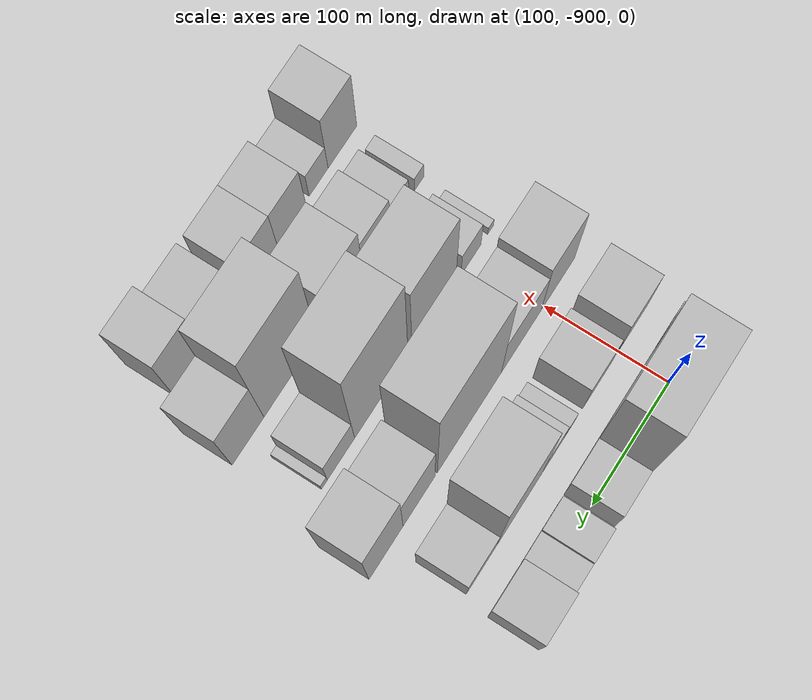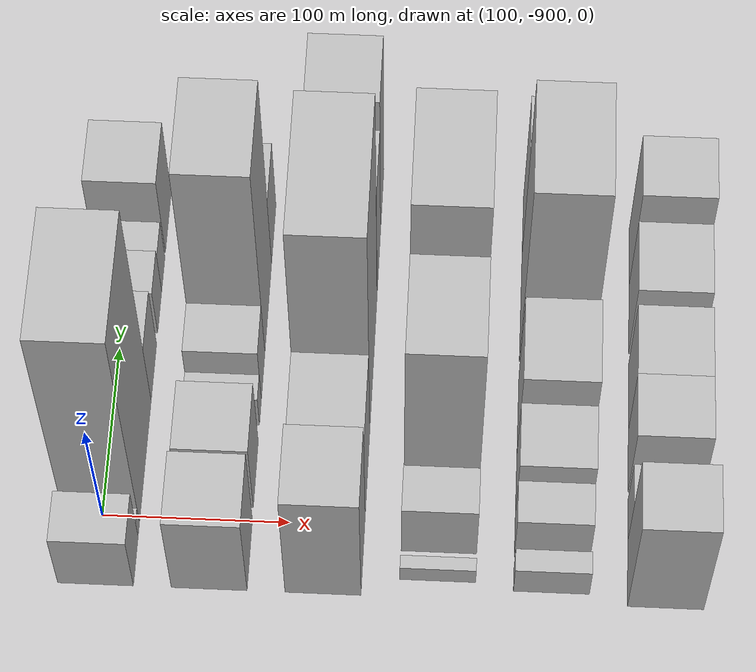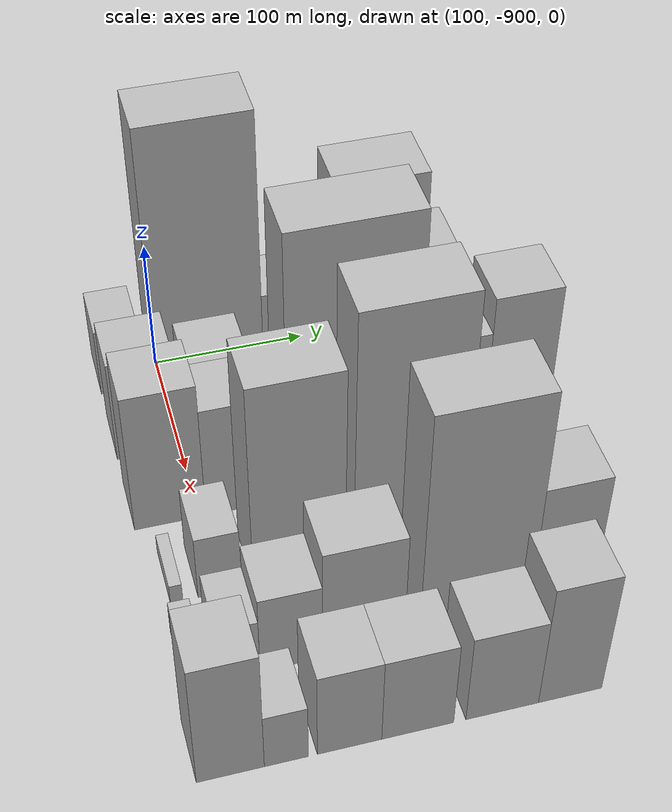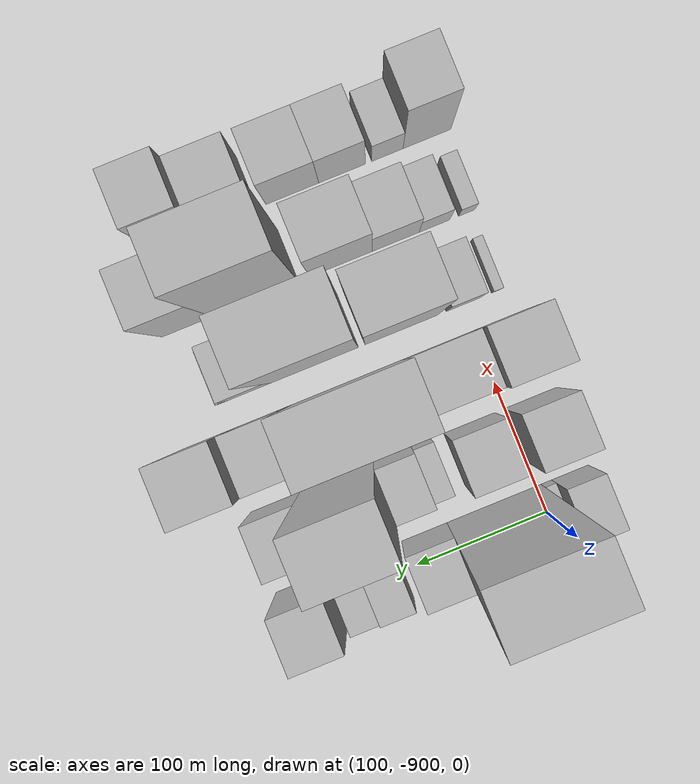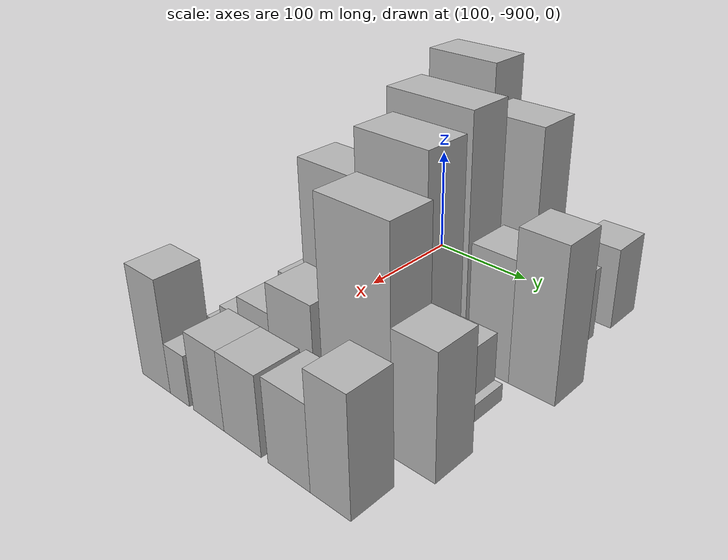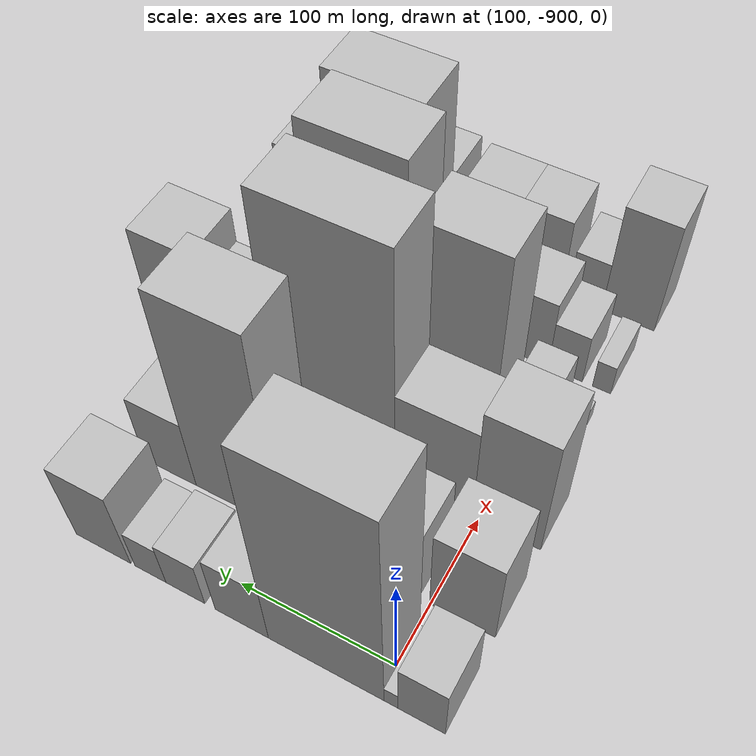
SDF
<sdf version="1.6">
 <world name="default">
  <model name="building_1">
   <static>1</static>
   <pose>100.0000 -925.8570 0 0.000000 0.000000 0.000000</pose>
   <link name="link">
    <pose>0 0 27.00 0 0 0</pose>
    <collision name="collision"><geometry><box><size>40.0000 28.2860 54.0000</size></box></geometry></collision>
    <visual name="visual">
     <cast_shadows>0</cast_shadows>
     <geometry><box><size>40.0000 28.2860 54.0000</size></box></geometry>
     <material>
      <script>
       <uri>model://HANNAS_wall/materials/scripts</uri>
       <uri>model://HANNAS_wall/materials/textures</uri>
       <name>vrc/HANNAS_wall</name>
      </script>
     </material>
    </visual>
   </link>
  </model>
  <model name="building_2">
   <static>1</static>
   <pose>100.0000 -907.5937 0 0.000000 0.000000 0.000000</pose>
   <link name="link">
    <pose>0 0 9.00 0 0 0</pose>
    <collision name="collision"><geometry><box><size>40.0000 8.2405 18.0000</size></box></geometry></collision>
    <visual name="visual">
     <cast_shadows>0</cast_shadows>
     <geometry><box><size>40.0000 8.2405 18.0000</size></box></geometry>
     <material>
      <script>
       <uri>model://HANNAS_wall/materials/scripts</uri>
       <uri>model://HANNAS_wall/materials/textures</uri>
       <name>vrc/HANNAS_wall</name>
      </script>
     </material>
    </visual>
   </link>
  </model>
  <model name="building_3">
   <static>1</static>
   <pose>100.0000 -867.1796 0 0.000000 0.000000 0.000000</pose>
   <link name="link">
    <pose>0 0 102.00 0 0 0</pose>
    <collision name="collision"><geometry><box><size>40.0000 72.5878 204.0000</size></box></geometry></collision>
    <visual name="visual">
     <cast_shadows>0</cast_shadows>
     <geometry><box><size>40.0000 72.5878 204.0000</size></box></geometry>
     <material>
      <script>
       <uri>model://HANNAS_wall/materials/scripts</uri>
       <uri>model://HANNAS_wall/materials/textures</uri>
       <name>vrc/HANNAS_wall</name>
      </script>
     </material>
    </visual>
   </link>
  </model>
  <model name="building_4">
   <static>1</static>
   <pose>100.0000 -813.3753 0 0.000000 0.000000 0.000000</pose>
   <link name="link">
    <pose>0 0 30.00 0 0 0</pose>
    <collision name="collision"><geometry><box><size>40.0000 35.0207 60.0000</size></box></geometry></collision>
    <visual name="visual">
     <cast_shadows>0</cast_shadows>
     <geometry><box><size>40.0000 35.0207 60.0000</size></box></geometry>
     <material>
      <script>
       <uri>model://HANNAS_wall/materials/scripts</uri>
       <uri>model://HANNAS_wall/materials/textures</uri>
       <name>vrc/HANNAS_wall</name>
      </script>
     </material>
    </visual>
   </link>
  </model>
  <model name="building_5">
   <static>1</static>
   <pose>100.0000 -775.6763 0 0.000000 0.000000 0.000000</pose>
   <link name="link">
    <pose>0 0 22.50 0 0 0</pose>
    <collision name="collision"><geometry><box><size>40.0000 26.3772 45.0000</size></box></geometry></collision>
    <visual name="visual">
     <cast_shadows>0</cast_shadows>
     <geometry><box><size>40.0000 26.3772 45.0000</size></box></geometry>
     <material>
      <script>
       <uri>model://HANNAS_wall/materials/scripts</uri>
       <uri>model://HANNAS_wall/materials/textures</uri>
       <name>vrc/HANNAS_wall</name>
      </script>
     </material>
    </visual>
   </link>
  </model>
  <model name="building_6">
   <static>1</static>
   <pose>100.0000 -751.6416 0 0.000000 0.000000 0.000000</pose>
   <link name="link">
    <pose>0 0 19.50 0 0 0</pose>
    <collision name="collision"><geometry><box><size>40.0000 21.6923 39.0000</size></box></geometry></collision>
    <visual name="visual">
     <cast_shadows>0</cast_shadows>
     <geometry><box><size>40.0000 21.6923 39.0000</size></box></geometry>
     <material>
      <script>
       <uri>model://HANNAS_wall/materials/scripts</uri>
       <uri>model://HANNAS_wall/materials/textures</uri>
       <name>vrc/HANNAS_wall</name>
      </script>
     </material>
    </visual>
   </link>
  </model>
  <model name="building_7">
   <static>1</static>
   <pose>100.0000 -718.3860 0 0.000000 0.000000 0.000000</pose>
   <link name="link">
    <pose>0 0 37.50 0 0 0</pose>
    <collision name="collision"><geometry><box><size>40.0000 38.8188 75.0000</size></box></geometry></collision>
    <visual name="visual">
     <cast_shadows>0</cast_shadows>
     <geometry><box><size>40.0000 38.8188 75.0000</size></box></geometry>
     <material>
      <script>
       <uri>model://HANNAS_wall/materials/scripts</uri>
       <uri>model://HANNAS_wall/materials/textures</uri>
       <name>vrc/HANNAS_wall</name>
      </script>
     </material>
    </visual>
   </link>
  </model>
  <model name="building_53">
   <static>1</static>
   <pose>160.0000 -919.6051 0 0.000000 0.000000 0.000000</pose>
   <link name="link">
    <pose>0 0 40.50 0 0 0</pose>
    <collision name="collision"><geometry><box><size>40.0000 40.7898 81.0000</size></box></geometry></collision>
    <visual name="visual">
     <cast_shadows>0</cast_shadows>
     <geometry><box><size>40.0000 40.7898 81.0000</size></box></geometry>
     <material>
      <script>
       <uri>model://HANNAS_wall/materials/scripts</uri>
       <uri>model://HANNAS_wall/materials/textures</uri>
       <name>vrc/HANNAS_wall</name>
      </script>
     </material>
    </visual>
   </link>
  </model>
  <model name="building_54">
   <static>1</static>
   <pose>160.0000 -872.5477 0 0.000000 0.000000 0.000000</pose>
   <link name="link">
    <pose>0 0 34.50 0 0 0</pose>
    <collision name="collision"><geometry><box><size>40.0000 39.3249 69.0000</size></box></geometry></collision>
    <visual name="visual">
     <cast_shadows>0</cast_shadows>
     <geometry><box><size>40.0000 39.3249 69.0000</size></box></geometry>
     <material>
      <script>
       <uri>model://HANNAS_wall/materials/scripts</uri>
       <uri>model://HANNAS_wall/materials/textures</uri>
       <name>vrc/HANNAS_wall</name>
      </script>
     </material>
    </visual>
   </link>
  </model>
  <model name="building_55">
   <static>1</static>
   <pose>160.0000 -835.2553 0 0.000000 0.000000 0.000000</pose>
   <link name="link">
    <pose>0 0 15.00 0 0 0</pose>
    <collision name="collision"><geometry><box><size>40.0000 15.2600 30.0000</size></box></geometry></collision>
    <visual name="visual">
     <cast_shadows>0</cast_shadows>
     <geometry><box><size>40.0000 15.2600 30.0000</size></box></geometry>
     <material>
      <script>
       <uri>model://HANNAS_wall/materials/scripts</uri>
       <uri>model://HANNAS_wall/materials/textures</uri>
       <name>vrc/HANNAS_wall</name>
      </script>
     </material>
    </visual>
   </link>
  </model>
  <model name="building_56">
   <static>1</static>
   <pose>160.0000 -813.1141 0 0.000000 0.000000 0.000000</pose>
   <link name="link">
    <pose>0 0 27.00 0 0 0</pose>
    <collision name="collision"><geometry><box><size>40.0000 29.0226 54.0000</size></box></geometry></collision>
    <visual name="visual">
     <cast_shadows>0</cast_shadows>
     <geometry><box><size>40.0000 29.0226 54.0000</size></box></geometry>
     <material>
      <script>
       <uri>model://HANNAS_wall/materials/scripts</uri>
       <uri>model://HANNAS_wall/materials/textures</uri>
       <name>vrc/HANNAS_wall</name>
      </script>
     </material>
    </visual>
   </link>
  </model>
  <model name="building_57">
   <static>1</static>
   <pose>160.0000 -770.1726 0 0.000000 0.000000 0.000000</pose>
   <link name="link">
    <pose>0 0 93.00 0 0 0</pose>
    <collision name="collision"><geometry><box><size>40.0000 56.8603 186.0000</size></box></geometry></collision>
    <visual name="visual">
     <cast_shadows>0</cast_shadows>
     <geometry><box><size>40.0000 56.8603 186.0000</size></box></geometry>
     <material>
      <script>
       <uri>model://HANNAS_wall/materials/scripts</uri>
       <uri>model://HANNAS_wall/materials/textures</uri>
       <name>vrc/HANNAS_wall</name>
      </script>
     </material>
    </visual>
   </link>
  </model>
  <model name="building_58">
   <static>1</static>
   <pose>160.0000 -722.9349 0 0.000000 0.000000 0.000000</pose>
   <link name="link">
    <pose>0 0 33.00 0 0 0</pose>
    <collision name="collision"><geometry><box><size>40.0000 37.6151 66.0000</size></box></geometry></collision>
    <visual name="visual">
     <cast_shadows>0</cast_shadows>
     <geometry><box><size>40.0000 37.6151 66.0000</size></box></geometry>
     <material>
      <script>
       <uri>model://HANNAS_wall/materials/scripts</uri>
       <uri>model://HANNAS_wall/materials/textures</uri>
       <name>vrc/HANNAS_wall</name>
      </script>
     </material>
    </visual>
   </link>
  </model>
  <model name="building_101">
   <static>1</static>
   <pose>220.0000 -918.0103 0 0.000000 0.000000 0.000000</pose>
   <link name="link">
    <pose>0 0 55.50 0 0 0</pose>
    <collision name="collision"><geometry><box><size>40.0000 43.9795 111.0000</size></box></geometry></collision>
    <visual name="visual">
     <cast_shadows>0</cast_shadows>
     <geometry><box><size>40.0000 43.9795 111.0000</size></box></geometry>
     <material>
      <script>
       <uri>model://HANNAS_wall/materials/scripts</uri>
       <uri>model://HANNAS_wall/materials/textures</uri>
       <name>vrc/HANNAS_wall</name>
      </script>
     </material>
    </visual>
   </link>
  </model>
  <model name="building_102">
   <static>1</static>
   <pose>220.0000 -870.1794 0 0.000000 0.000000 0.000000</pose>
   <link name="link">
    <pose>0 0 45.00 0 0 0</pose>
    <collision name="collision"><geometry><box><size>40.0000 51.6822 90.0000</size></box></geometry></collision>
    <visual name="visual">
     <cast_shadows>0</cast_shadows>
     <geometry><box><size>40.0000 51.6822 90.0000</size></box></geometry>
     <material>
      <script>
       <uri>model://HANNAS_wall/materials/scripts</uri>
       <uri>model://HANNAS_wall/materials/textures</uri>
       <name>vrc/HANNAS_wall</name>
      </script>
     </material>
    </visual>
   </link>
  </model>
  <model name="building_103">
   <static>1</static>
   <pose>220.0000 -803.4020 0 0.000000 0.000000 0.000000</pose>
   <link name="link">
    <pose>0 0 105.00 0 0 0</pose>
    <collision name="collision"><geometry><box><size>40.0000 81.8727 210.0000</size></box></geometry></collision>
    <visual name="visual">
     <cast_shadows>0</cast_shadows>
     <geometry><box><size>40.0000 81.8727 210.0000</size></box></geometry>
     <material>
      <script>
       <uri>model://HANNAS_wall/materials/scripts</uri>
       <uri>model://HANNAS_wall/materials/textures</uri>
       <name>vrc/HANNAS_wall</name>
      </script>
     </material>
    </visual>
   </link>
  </model>
  <model name="building_104">
   <static>1</static>
   <pose>220.0000 -739.4751 0 0.000000 0.000000 0.000000</pose>
   <link name="link">
    <pose>0 0 54.00 0 0 0</pose>
    <collision name="collision"><geometry><box><size>40.0000 39.9810 108.0000</size></box></geometry></collision>
    <visual name="visual">
     <cast_shadows>0</cast_shadows>
     <geometry><box><size>40.0000 39.9810 108.0000</size></box></geometry>
     <material>
      <script>
       <uri>model://HANNAS_wall/materials/scripts</uri>
       <uri>model://HANNAS_wall/materials/textures</uri>
       <name>vrc/HANNAS_wall</name>
      </script>
     </material>
    </visual>
   </link>
  </model>
  <model name="building_105">
   <static>1</static>
   <pose>220.0000 -698.5142 0 0.000000 0.000000 0.000000</pose>
   <link name="link">
    <pose>0 0 67.50 0 0 0</pose>
    <collision name="collision"><geometry><box><size>40.0000 41.9409 135.0000</size></box></geometry></collision>
    <visual name="visual">
     <cast_shadows>0</cast_shadows>
     <geometry><box><size>40.0000 41.9409 135.0000</size></box></geometry>
     <material>
      <script>
       <uri>model://HANNAS_wall/materials/scripts</uri>
       <uri>model://HANNAS_wall/materials/textures</uri>
       <name>vrc/HANNAS_wall</name>
      </script>
     </material>
    </visual>
   </link>
  </model>
  <model name="building_144">
   <static>1</static>
   <pose>280.0000 -926.2795 0 0.000000 0.000000 0.000000</pose>
   <link name="link">
    <pose>0 0 7.50 0 0 0</pose>
    <collision name="collision"><geometry><box><size>40.0000 7.4410 15.0000</size></box></geometry></collision>
    <visual name="visual">
     <cast_shadows>0</cast_shadows>
     <geometry><box><size>40.0000 7.4410 15.0000</size></box></geometry>
     <material>
      <script>
       <uri>model://HANNAS_wall/materials/scripts</uri>
       <uri>model://HANNAS_wall/materials/textures</uri>
       <name>vrc/HANNAS_wall</name>
      </script>
     </material>
    </visual>
   </link>
  </model>
  <model name="building_145">
   <static>1</static>
   <pose>280.0000 -900.5291 0 0.000000 0.000000 0.000000</pose>
   <link name="link">
    <pose>0 0 25.50 0 0 0</pose>
    <collision name="collision"><geometry><box><size>40.0000 26.0598 51.0000</size></box></geometry></collision>
    <visual name="visual">
     <cast_shadows>0</cast_shadows>
     <geometry><box><size>40.0000 26.0598 51.0000</size></box></geometry>
     <material>
      <script>
       <uri>model://HANNAS_wall/materials/scripts</uri>
       <uri>model://HANNAS_wall/materials/textures</uri>
       <name>vrc/HANNAS_wall</name>
      </script>
     </material>
    </visual>
   </link>
  </model>
  <model name="building_146">
   <static>1</static>
   <pose>280.0000 -852.5770 0 0.000000 0.000000 0.000000</pose>
   <link name="link">
    <pose>0 0 81.00 0 0 0</pose>
    <collision name="collision"><geometry><box><size>40.0000 55.8445 162.0000</size></box></geometry></collision>
    <visual name="visual">
     <cast_shadows>0</cast_shadows>
     <geometry><box><size>40.0000 55.8445 162.0000</size></box></geometry>
     <material>
      <script>
       <uri>model://HANNAS_wall/materials/scripts</uri>
       <uri>model://HANNAS_wall/materials/textures</uri>
       <name>vrc/HANNAS_wall</name>
      </script>
     </material>
    </visual>
   </link>
  </model>
  <model name="building_147">
   <static>1</static>
   <pose>280.0000 -785.9917 0 0.000000 0.000000 0.000000</pose>
   <link name="link">
    <pose>0 0 100.50 0 0 0</pose>
    <collision name="collision"><geometry><box><size>40.0000 67.3261 201.0000</size></box></geometry></collision>
    <visual name="visual">
     <cast_shadows>0</cast_shadows>
     <geometry><box><size>40.0000 67.3261 201.0000</size></box></geometry>
     <material>
      <script>
       <uri>model://HANNAS_wall/materials/scripts</uri>
       <uri>model://HANNAS_wall/materials/textures</uri>
       <name>vrc/HANNAS_wall</name>
      </script>
     </material>
    </visual>
   </link>
  </model>
  <model name="building_148">
   <static>1</static>
   <pose>280.0000 -735.3943 0 0.000000 0.000000 0.000000</pose>
   <link name="link">
    <pose>0 0 28.50 0 0 0</pose>
    <collision name="collision"><geometry><box><size>40.0000 33.8688 57.0000</size></box></geometry></collision>
    <visual name="visual">
     <cast_shadows>0</cast_shadows>
     <geometry><box><size>40.0000 33.8688 57.0000</size></box></geometry>
     <material>
      <script>
       <uri>model://HANNAS_wall/materials/scripts</uri>
       <uri>model://HANNAS_wall/materials/textures</uri>
       <name>vrc/HANNAS_wall</name>
      </script>
     </material>
    </visual>
   </link>
  </model>
  <model name="building_149">
   <static>1</static>
   <pose>280.0000 -714.7915 0 0.000000 0.000000 0.000000</pose>
   <link name="link">
    <pose>0 0 7.50 0 0 0</pose>
    <collision name="collision"><geometry><box><size>40.0000 7.3368 15.0000</size></box></geometry></collision>
    <visual name="visual">
     <cast_shadows>0</cast_shadows>
     <geometry><box><size>40.0000 7.3368 15.0000</size></box></geometry>
     <material>
      <script>
       <uri>model://HANNAS_wall/materials/scripts</uri>
       <uri>model://HANNAS_wall/materials/textures</uri>
       <name>vrc/HANNAS_wall</name>
      </script>
     </material>
    </visual>
   </link>
  </model>
  <model name="building_191">
   <static>1</static>
   <pose>340.0000 -927.7681 0 0.000000 0.000000 0.000000</pose>
   <link name="link">
    <pose>0 0 13.50 0 0 0</pose>
    <collision name="collision"><geometry><box><size>40.0000 12.4637 27.0000</size></box></geometry></collision>
    <visual name="visual">
     <cast_shadows>0</cast_shadows>
     <geometry><box><size>40.0000 12.4637 27.0000</size></box></geometry>
     <material>
      <script>
       <uri>model://HANNAS_wall/materials/scripts</uri>
       <uri>model://HANNAS_wall/materials/textures</uri>
       <name>vrc/HANNAS_wall</name>
      </script>
     </material>
    </visual>
   </link>
  </model>
  <model name="building_192">
   <static>1</static>
   <pose>340.0000 -902.7154 0 0.000000 0.000000 0.000000</pose>
   <link name="link">
    <pose>0 0 22.50 0 0 0</pose>
    <collision name="collision"><geometry><box><size>40.0000 23.6419 45.0000</size></box></geometry></collision>
    <visual name="visual">
     <cast_shadows>0</cast_shadows>
     <geometry><box><size>40.0000 23.6419 45.0000</size></box></geometry>
     <material>
      <script>
       <uri>model://HANNAS_wall/materials/scripts</uri>
       <uri>model://HANNAS_wall/materials/textures</uri>
       <name>vrc/HANNAS_wall</name>
      </script>
     </material>
    </visual>
   </link>
  </model>
  <model name="building_193">
   <static>1</static>
   <pose>340.0000 -872.8247 0 0.000000 0.000000 0.000000</pose>
   <link name="link">
    <pose>0 0 31.50 0 0 0</pose>
    <collision name="collision"><geometry><box><size>40.0000 36.1394 63.0000</size></box></geometry></collision>
    <visual name="visual">
     <cast_shadows>0</cast_shadows>
     <geometry><box><size>40.0000 36.1394 63.0000</size></box></geometry>
     <material>
      <script>
       <uri>model://HANNAS_wall/materials/scripts</uri>
       <uri>model://HANNAS_wall/materials/textures</uri>
       <name>vrc/HANNAS_wall</name>
      </script>
     </material>
    </visual>
   </link>
  </model>
  <model name="building_194">
   <static>1</static>
   <pose>340.0000 -830.7070 0 0.000000 0.000000 0.000000</pose>
   <link name="link">
    <pose>0 0 45.00 0 0 0</pose>
    <collision name="collision"><geometry><box><size>40.0000 48.0961 90.0000</size></box></geometry></collision>
    <visual name="visual">
     <cast_shadows>0</cast_shadows>
     <geometry><box><size>40.0000 48.0961 90.0000</size></box></geometry>
     <material>
      <script>
       <uri>model://HANNAS_wall/materials/scripts</uri>
       <uri>model://HANNAS_wall/materials/textures</uri>
       <name>vrc/HANNAS_wall</name>
      </script>
     </material>
    </visual>
   </link>
  </model>
  <model name="building_195">
   <static>1</static>
   <pose>340.0000 -764.4953 0 0.000000 0.000000 0.000000</pose>
   <link name="link">
    <pose>0 0 90.00 0 0 0</pose>
    <collision name="collision"><geometry><box><size>40.0000 66.3273 180.0000</size></box></geometry></collision>
    <visual name="visual">
     <cast_shadows>0</cast_shadows>
     <geometry><box><size>40.0000 66.3273 180.0000</size></box></geometry>
     <material>
      <script>
       <uri>model://HANNAS_wall/materials/scripts</uri>
       <uri>model://HANNAS_wall/materials/textures</uri>
       <name>vrc/HANNAS_wall</name>
      </script>
     </material>
    </visual>
   </link>
  </model>
  <model name="building_196">
   <static>1</static>
   <pose>340.0000 -711.8274 0 0.000000 0.000000 0.000000</pose>
   <link name="link">
    <pose>0 0 52.50 0 0 0</pose>
    <collision name="collision"><geometry><box><size>40.0000 39.0085 105.0000</size></box></geometry></collision>
    <visual name="visual">
     <cast_shadows>0</cast_shadows>
     <geometry><box><size>40.0000 39.0085 105.0000</size></box></geometry>
     <material>
      <script>
       <uri>model://HANNAS_wall/materials/scripts</uri>
       <uri>model://HANNAS_wall/materials/textures</uri>
       <name>vrc/HANNAS_wall</name>
      </script>
     </material>
    </visual>
   </link>
  </model>
  <model name="building_239">
   <static>1</static>
   <pose>400.0000 -921.4915 0 0.000000 0.000000 0.000000</pose>
   <link name="link">
    <pose>0 0 49.50 0 0 0</pose>
    <collision name="collision"><geometry><box><size>40.0000 37.0170 99.0000</size></box></geometry></collision>
    <visual name="visual">
     <cast_shadows>0</cast_shadows>
     <geometry><box><size>40.0000 37.0170 99.0000</size></box></geometry>
     <material>
      <script>
       <uri>model://HANNAS_wall/materials/scripts</uri>
       <uri>model://HANNAS_wall/materials/textures</uri>
       <name>vrc/HANNAS_wall</name>
      </script>
     </material>
    </visual>
   </link>
  </model>
  <model name="building_240">
   <static>1</static>
   <pose>400.0000 -890.9009 0 0.000000 0.000000 0.000000</pose>
   <link name="link">
    <pose>0 0 22.50 0 0 0</pose>
    <collision name="collision"><geometry><box><size>40.0000 24.1642 45.0000</size></box></geometry></collision>
    <visual name="visual">
     <cast_shadows>0</cast_shadows>
     <geometry><box><size>40.0000 24.1642 45.0000</size></box></geometry>
     <material>
      <script>
       <uri>model://HANNAS_wall/materials/scripts</uri>
       <uri>model://HANNAS_wall/materials/textures</uri>
       <name>vrc/HANNAS_wall</name>
      </script>
     </material>
    </visual>
   </link>
  </model>
  <model name="building_241">
   <static>1</static>
   <pose>400.0000 -855.8085 0 0.000000 0.000000 0.000000</pose>
   <link name="link">
    <pose>0 0 34.50 0 0 0</pose>
    <collision name="collision"><geometry><box><size>40.0000 36.0205 69.0000</size></box></geometry></collision>
    <visual name="visual">
     <cast_shadows>0</cast_shadows>
     <geometry><box><size>40.0000 36.0205 69.0000</size></box></geometry>
     <material>
      <script>
       <uri>model://HANNAS_wall/materials/scripts</uri>
       <uri>model://HANNAS_wall/materials/textures</uri>
       <name>vrc/HANNAS_wall</name>
      </script>
     </material>
    </visual>
   </link>
  </model>
  <model name="building_242">
   <static>1</static>
   <pose>400.0000 -817.3766 0 0.000000 0.000000 0.000000</pose>
   <link name="link">
    <pose>0 0 34.50 0 0 0</pose>
    <collision name="collision"><geometry><box><size>40.0000 40.8433 69.0000</size></box></geometry></collision>
    <visual name="visual">
     <cast_shadows>0</cast_shadows>
     <geometry><box><size>40.0000 40.8433 69.0000</size></box></geometry>
     <material>
      <script>
       <uri>model://HANNAS_wall/materials/scripts</uri>
       <uri>model://HANNAS_wall/materials/textures</uri>
       <name>vrc/HANNAS_wall</name>
      </script>
     </material>
    </visual>
   </link>
  </model>
  <model name="building_243">
   <static>1</static>
   <pose>400.0000 -768.9400 0 0.000000 0.000000 0.000000</pose>
   <link name="link">
    <pose>0 0 36.00 0 0 0</pose>
    <collision name="collision"><geometry><box><size>40.0000 42.0298 72.0000</size></box></geometry></collision>
    <visual name="visual">
     <cast_shadows>0</cast_shadows>
     <geometry><box><size>40.0000 42.0298 72.0000</size></box></geometry>
     <material>
      <script>
       <uri>model://HANNAS_wall/materials/scripts</uri>
       <uri>model://HANNAS_wall/materials/textures</uri>
       <name>vrc/HANNAS_wall</name>
      </script>
     </material>
    </visual>
   </link>
  </model>
  <model name="building_244">
   <static>1</static>
   <pose>400.0000 -729.3218 0 0.000000 0.000000 0.000000</pose>
   <link name="link">
    <pose>0 0 49.50 0 0 0</pose>
    <collision name="collision"><geometry><box><size>40.0000 37.2068 99.0000</size></box></geometry></collision>
    <visual name="visual">
     <cast_shadows>0</cast_shadows>
     <geometry><box><size>40.0000 37.2068 99.0000</size></box></geometry>
     <material>
      <script>
       <uri>model://HANNAS_wall/materials/scripts</uri>
       <uri>model://HANNAS_wall/materials/textures</uri>
       <name>vrc/HANNAS_wall</name>
      </script>
     </material>
    </visual>
   </link>
  </model>
 </world>
</sdf>
